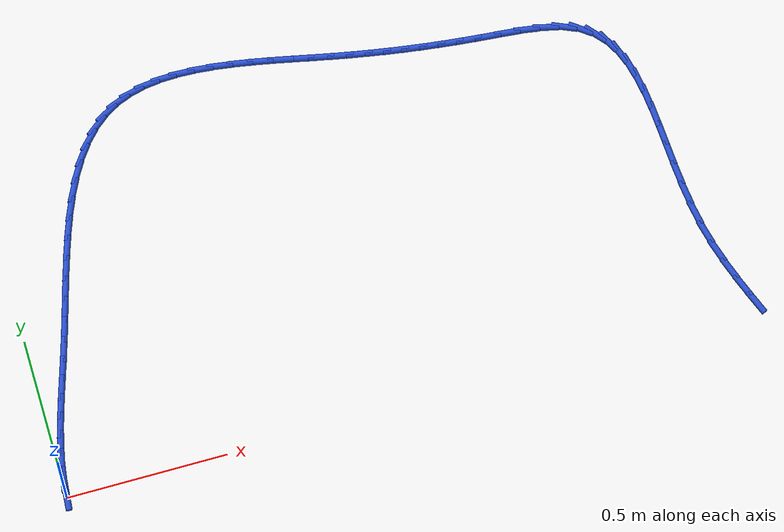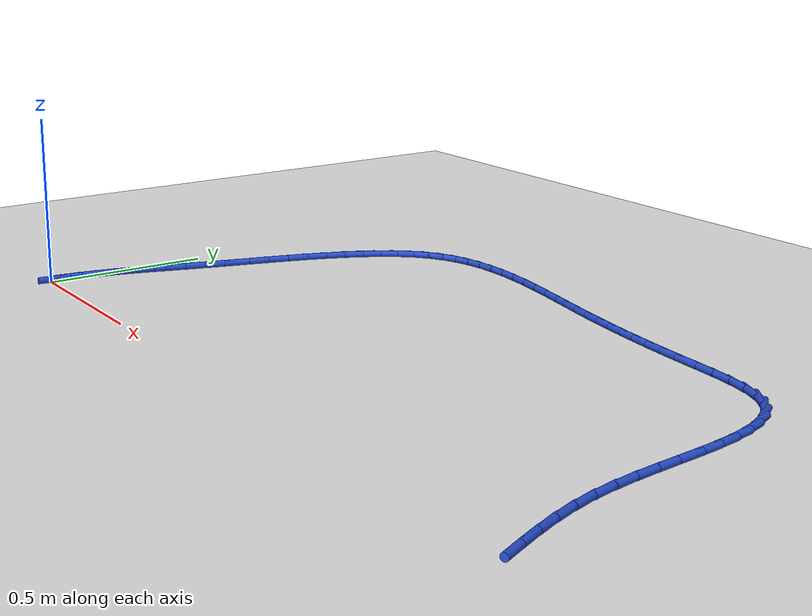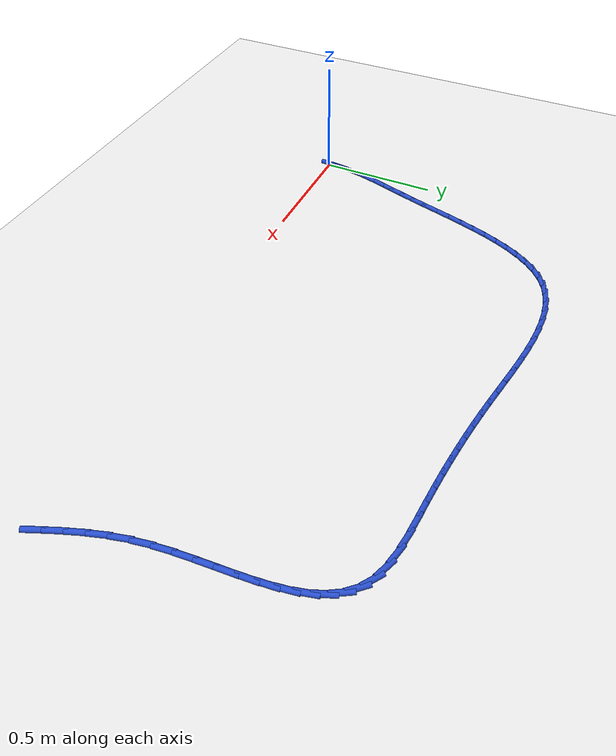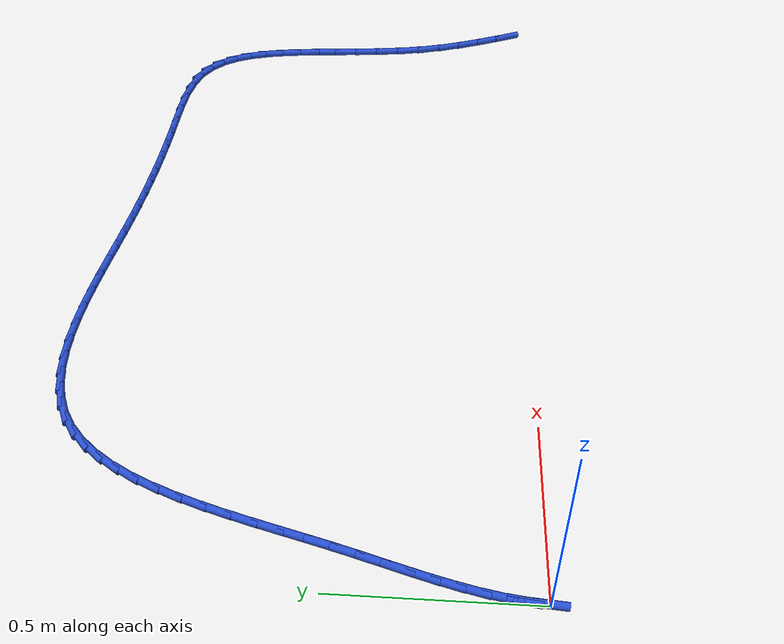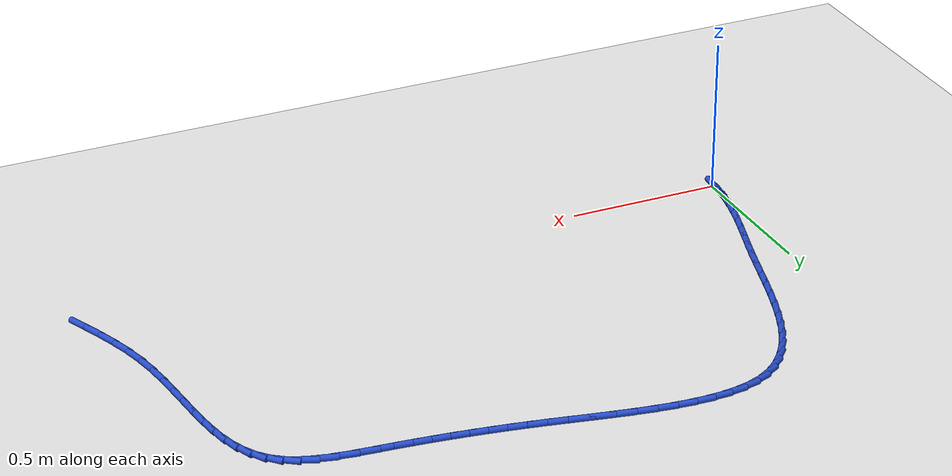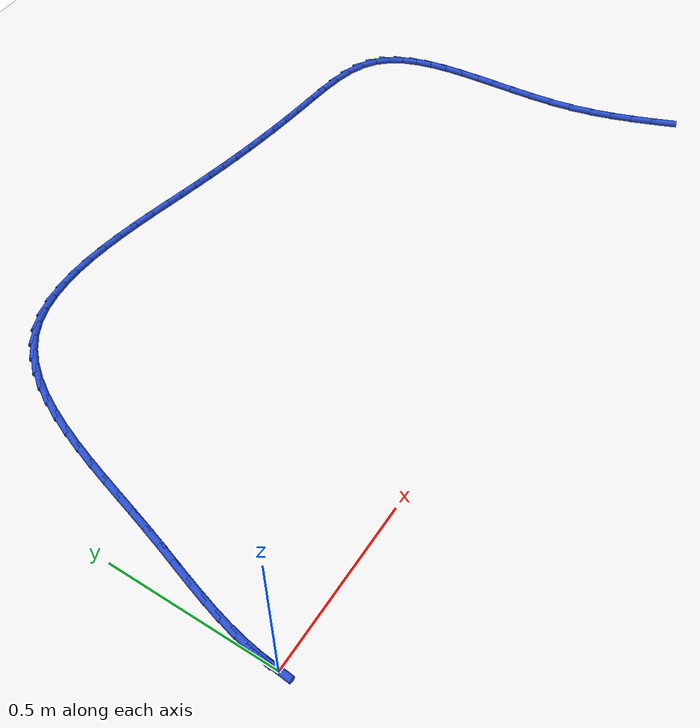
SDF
<sdf version="1.6">
 <world name="default">
  <model name="ground_plane">
   <static>1</static>
   <link name="link">
    <collision name="collision">
     <geometry><plane><normal>0 0 1</normal><size>100 100</size></plane></geometry>
     <surface><friction><ode><mu>100</mu><mu2>50</mu2></ode></friction></surface>
    </collision>
    <visual name="visual">
     <cast_shadows>0</cast_shadows>
     <geometry><plane><normal>0 0 1</normal><size>100 100</size></plane></geometry>
     <material>
      <script><uri>file://media/materials/scripts/gazebo.material</uri><name>Gazebo/WhiteGlow</name></script>
     </material>
    </visual>
   </link>
  </model>
  <model name="line">
   <link name="link_0">
    <pose>3.122502256758253e-17 9.71445146547012e-17 0.01 0 1.57 1.4869600935021465</pose>
    <collision name="collision">
     <geometry><cylinder><radius>0.01</radius><length>0.08</length></cylinder></geometry>
    </collision>
    <visual name="visual">
     <material>
      <script><name>Gazebo/Blue</name><uri>file://media/materials/scripts/gazebo.material</uri></script>
     </material>
     <geometry><cylinder><radius>0.01</radius><length>0.08</length></cylinder></geometry>
    </visual>
   </link>
   <link name="link_1">
    <pose>0.004678604671483911 0.055675668333571945 0.01 0 1.57 1.4202148316017842</pose>
    <collision name="collision">
     <geometry><cylinder><radius>0.01</radius><length>0.08</length></cylinder></geometry>
    </collision>
    <visual name="visual">
     <material>
      <script><name>Gazebo/Blue</name><uri>file://media/materials/scripts/gazebo.material</uri></script>
     </material>
     <geometry><cylinder><radius>0.01</radius><length>0.08</length></cylinder></geometry>
    </visual>
   </link>
   <link name="link_2">
    <pose>0.013004435005590488 0.11054832172414104 0.01 0 1.57 1.3642246685337596</pose>
    <collision name="collision">
     <geometry><cylinder><radius>0.01</radius><length>0.08</length></cylinder></geometry>
    </collision>
    <visual name="visual">
     <material>
      <script><name>Gazebo/Blue</name><uri>file://media/materials/scripts/gazebo.material</uri></script>
     </material>
     <geometry><cylinder><radius>0.01</radius><length>0.08</length></cylinder></geometry>
    </visual>
   </link>
   <link name="link_3">
    <pose>0.02440961978854685 0.16497250902468139 0.01 0 1.57 1.3200383861064322</pose>
    <collision name="collision">
     <geometry><cylinder><radius>0.01</radius><length>0.08</length></cylinder></geometry>
    </collision>
    <visual name="visual">
     <material>
      <script><name>Gazebo/Blue</name><uri>file://media/materials/scripts/gazebo.material</uri></script>
     </material>
     <geometry><cylinder><radius>0.01</radius><length>0.08</length></cylinder></geometry>
    </visual>
   </link>
   <link name="link_4">
    <pose>0.03832628780658009 0.2193027790881671 0.01 0 1.57 1.2880503364244809</pose>
    <collision name="collision">
     <geometry><cylinder><radius>0.01</radius><length>0.08</length></cylinder></geometry>
    </collision>
    <visual name="visual">
     <material>
      <script><name>Gazebo/Blue</name><uri>file://media/materials/scripts/gazebo.material</uri></script>
     </material>
     <geometry><cylinder><radius>0.01</radius><length>0.08</length></cylinder></geometry>
    </visual>
   </link>
   <link name="link_5">
    <pose>0.05418656784591731 0.2738936807675722 0.01 0 1.57 1.2681735348550305</pose>
    <collision name="collision">
     <geometry><cylinder><radius>0.01</radius><length>0.08</length></cylinder></geometry>
    </collision>
    <visual name="visual">
     <material>
      <script><name>Gazebo/Blue</name><uri>file://media/materials/scripts/gazebo.material</uri></script>
     </material>
     <geometry><cylinder><radius>0.01</radius><length>0.08</length></cylinder></geometry>
    </visual>
   </link>
   <link name="link_6">
    <pose>0.07142258869278563 0.32909976291587095 0.01 0 1.57 1.2600016808793706</pose>
    <collision name="collision">
     <geometry><cylinder><radius>0.01</radius><length>0.08</length></cylinder></geometry>
    </collision>
    <visual name="visual">
     <material>
      <script><name>Gazebo/Blue</name><uri>file://media/materials/scripts/gazebo.material</uri></script>
     </material>
     <geometry><cylinder><radius>0.01</radius><length>0.08</length></cylinder></geometry>
    </visual>
   </link>
   <link name="link_7">
    <pose>0.0894664791334121 0.3852755743860372 0.01 0 1.57 1.2629266580736835</pose>
    <collision name="collision">
     <geometry><cylinder><radius>0.01</radius><length>0.08</length></cylinder></geometry>
    </collision>
    <visual name="visual">
     <material>
      <script><name>Gazebo/Blue</name><uri>file://media/materials/scripts/gazebo.material</uri></script>
     </material>
     <geometry><cylinder><radius>0.01</radius><length>0.08</length></cylinder></geometry>
    </visual>
   </link>
   <link name="link_8">
    <pose>0.1077503679540238 0.4427756640310451 0.01 0 1.57 1.2754127616339617</pose>
    <collision name="collision">
     <geometry><cylinder><radius>0.01</radius><length>0.08</length></cylinder></geometry>
    </collision>
    <visual name="visual">
     <material>
      <script><name>Gazebo/Blue</name><uri>file://media/materials/scripts/gazebo.material</uri></script>
     </material>
     <geometry><cylinder><radius>0.01</radius><length>0.08</length></cylinder></geometry>
    </visual>
   </link>
   <link name="link_9">
    <pose>0.12574480850458739 0.501912413305112 0.01 0 1.57 1.2862988838026777</pose>
    <collision name="collision">
     <geometry><cylinder><radius>0.01</radius><length>0.08</length></cylinder></geometry>
    </collision>
    <visual name="visual">
     <material>
      <script><name>Gazebo/Blue</name><uri>file://media/materials/scripts/gazebo.material</uri></script>
     </material>
     <geometry><cylinder><radius>0.01</radius><length>0.08</length></cylinder></geometry>
    </visual>
   </link>
   <link name="link_10">
    <pose>0.14344103221684198 0.5624268077073328 0.01 0 1.57 1.2883929563439216</pose>
    <collision name="collision">
     <geometry><cylinder><radius>0.01</radius><length>0.08</length></cylinder></geometry>
    </collision>
    <visual name="visual">
     <material>
      <script><name>Gazebo/Blue</name><uri>file://media/materials/scripts/gazebo.material</uri></script>
     </material>
     <geometry><cylinder><radius>0.01</radius><length>0.08</length></cylinder></geometry>
    </visual>
   </link>
   <link name="link_11">
    <pose>0.1612050300426982 0.6236485688840195 0.01 0 1.57 1.2818717499731367</pose>
    <collision name="collision">
     <geometry><cylinder><radius>0.01</radius><length>0.08</length></cylinder></geometry>
    </collision>
    <visual name="visual">
     <material>
      <script><name>Gazebo/Blue</name><uri>file://media/materials/scripts/gazebo.material</uri></script>
     </material>
     <geometry><cylinder><radius>0.01</radius><length>0.08</length></cylinder></geometry>
    </visual>
   </link>
   <link name="link_12">
    <pose>0.17941104086399276 0.6848983671425415 0.01 0 1.57 1.2666306372250498</pose>
    <collision name="collision">
     <geometry><cylinder><radius>0.01</radius><length>0.08</length></cylinder></geometry>
    </collision>
    <visual name="visual">
     <material>
      <script><name>Gazebo/Blue</name><uri>file://media/materials/scripts/gazebo.material</uri></script>
     </material>
     <geometry><cylinder><radius>0.01</radius><length>0.08</length></cylinder></geometry>
    </visual>
   </link>
   <link name="link_13">
    <pose>0.1984333035625625 0.7454968727902685 0.01 0 1.57 1.2421253601103361</pose>
    <collision name="collision">
     <geometry><cylinder><radius>0.01</radius><length>0.08</length></cylinder></geometry>
    </collision>
    <visual name="visual">
     <material>
      <script><name>Gazebo/Blue</name><uri>file://media/materials/scripts/gazebo.material</uri></script>
     </material>
     <geometry><cylinder><radius>0.01</radius><length>0.08</length></cylinder></geometry>
    </visual>
   </link>
   <link name="link_14">
    <pose>0.21864605702024417 0.8047647561345707 0.01 0 1.57 1.2073522287505407</pose>
    <collision name="collision">
     <geometry><cylinder><radius>0.01</radius><length>0.08</length></cylinder></geometry>
    </collision>
    <visual name="visual">
     <material>
      <script><name>Gazebo/Blue</name><uri>file://media/materials/scripts/gazebo.material</uri></script>
     </material>
     <geometry><cylinder><radius>0.01</radius><length>0.08</length></cylinder></geometry>
    </visual>
   </link>
   <link name="link_15">
    <pose>0.24042354011887462 0.8620226874828172 0.01 0 1.57 1.160808446942961</pose>
    <collision name="collision">
     <geometry><cylinder><radius>0.01</radius><length>0.08</length></cylinder></geometry>
    </collision>
    <visual name="visual">
     <material>
      <script><name>Gazebo/Blue</name><uri>file://media/materials/scripts/gazebo.material</uri></script>
     </material>
     <geometry><cylinder><radius>0.01</radius><length>0.08</length></cylinder></geometry>
    </visual>
   </link>
   <link name="link_16">
    <pose>0.26413999174029057 0.9165913371423778 0.01 0 1.57 1.1004581570107168</pose>
    <collision name="collision">
     <geometry><cylinder><radius>0.01</radius><length>0.08</length></cylinder></geometry>
    </collision>
    <visual name="visual">
     <material>
      <script><name>Gazebo/Blue</name><uri>file://media/materials/scripts/gazebo.material</uri></script>
     </material>
     <geometry><cylinder><radius>0.01</radius><length>0.08</length></cylinder></geometry>
    </visual>
   </link>
   <link name="link_17">
    <pose>0.2901696507663287 0.967791375420622 0.01 0 1.57 1.0237625803660722</pose>
    <collision name="collision">
     <geometry><cylinder><radius>0.01</radius><length>0.08</length></cylinder></geometry>
    </collision>
    <visual name="visual">
     <material>
      <script><name>Gazebo/Blue</name><uri>file://media/materials/scripts/gazebo.material</uri></script>
     </material>
     <geometry><cylinder><radius>0.01</radius><length>0.08</length></cylinder></geometry>
    </visual>
   </link>
   <link name="link_18">
    <pose>0.31888675607882605 1.01494347262492 0.01 0 1.57 0.9278963346983794</pose>
    <collision name="collision">
     <geometry><cylinder><radius>0.01</radius><length>0.08</length></cylinder></geometry>
    </collision>
    <visual name="visual">
     <material>
      <script><name>Gazebo/Blue</name><uri>file://media/materials/scripts/gazebo.material</uri></script>
     </material>
     <geometry><cylinder><radius>0.01</radius><length>0.08</length></cylinder></geometry>
    </visual>
   </link>
   <link name="link_19">
    <pose>0.3506655465596191 1.0573682990626405 0.01 0 1.57 0.8103609685241255</pose>
    <collision name="collision">
     <geometry><cylinder><radius>0.01</radius><length>0.08</length></cylinder></geometry>
    </collision>
    <visual name="visual">
     <material>
      <script><name>Gazebo/Blue</name><uri>file://media/materials/scripts/gazebo.material</uri></script>
     </material>
     <geometry><cylinder><radius>0.01</radius><length>0.08</length></cylinder></geometry>
    </visual>
   </link>
   <link name="link_20">
    <pose>0.38588026109054485 1.094386525041154 0.01 0 1.57 0.670230969305245</pose>
    <collision name="collision">
     <geometry><cylinder><radius>0.01</radius><length>0.08</length></cylinder></geometry>
    </collision>
    <visual name="visual">
     <material>
      <script><name>Gazebo/Blue</name><uri>file://media/materials/scripts/gazebo.material</uri></script>
     </material>
     <geometry><cylinder><radius>0.01</radius><length>0.08</length></cylinder></geometry>
    </visual>
   </link>
   <link name="link_21">
    <pose>0.42490513855344003 1.1253188208678302 0.01 0 1.57 0.5105217869587192</pose>
    <collision name="collision">
     <geometry><cylinder><radius>0.01</radius><length>0.08</length></cylinder></geometry>
    </collision>
    <visual name="visual">
     <material>
      <script><name>Gazebo/Blue</name><uri>file://media/materials/scripts/gazebo.material</uri></script>
     </material>
     <geometry><cylinder><radius>0.01</radius><length>0.08</length></cylinder></geometry>
    </visual>
   </link>
   <link name="link_22">
    <pose>0.4680991086173036 1.1495093429322423 0.01 0 1.57 0.3528532784556485</pose>
    <collision name="collision">
     <geometry><cylinder><radius>0.01</radius><length>0.08</length></cylinder></geometry>
    </collision>
    <visual name="visual">
     <material>
      <script><name>Gazebo/Blue</name><uri>file://media/materials/scripts/gazebo.material</uri></script>
     </material>
     <geometry><cylinder><radius>0.01</radius><length>0.08</length></cylinder></geometry>
    </visual>
   </link>
   <link name="link_23">
    <pose>0.5154103253828128 1.1669324242938774 0.01 0 1.57 0.21860838550138775</pose>
    <collision name="collision">
     <geometry><cylinder><radius>0.01</radius><length>0.08</length></cylinder></geometry>
    </collision>
    <visual name="visual">
     <material>
      <script><name>Gazebo/Blue</name><uri>file://media/materials/scripts/gazebo.material</uri></script>
     </material>
     <geometry><cylinder><radius>0.01</radius><length>0.08</length></cylinder></geometry>
    </visual>
   </link>
   <link name="link_24">
    <pose>0.5663406641362243 1.1782470407193677 0.01 0 1.57 0.10876121152454575</pose>
    <collision name="collision">
     <geometry><cylinder><radius>0.01</radius><length>0.08</length></cylinder></geometry>
    </collision>
    <visual name="visual">
     <material>
      <script><name>Gazebo/Blue</name><uri>file://media/materials/scripts/gazebo.material</uri></script>
     </material>
     <geometry><cylinder><radius>0.01</radius><length>0.08</length></cylinder></geometry>
    </visual>
   </link>
   <link name="link_25">
    <pose>0.620369575001992 1.1841465707365513 0.01 0 1.57 0.020804027772219288</pose>
    <collision name="collision">
     <geometry><cylinder><radius>0.01</radius><length>0.08</length></cylinder></geometry>
    </collision>
    <visual name="visual">
     <material>
      <script><name>Gazebo/Blue</name><uri>file://media/materials/scripts/gazebo.material</uri></script>
     </material>
     <geometry><cylinder><radius>0.01</radius><length>0.08</length></cylinder></geometry>
    </visual>
   </link>
   <link name="link_26">
    <pose>0.6769765081045702 1.1853243928732669 0.01 0 1.57 -0.04855187778987565</pose>
    <collision name="collision">
     <geometry><cylinder><radius>0.01</radius><length>0.08</length></cylinder></geometry>
    </collision>
    <visual name="visual">
     <material>
      <script><name>Gazebo/Blue</name><uri>file://media/materials/scripts/gazebo.material</uri></script>
     </material>
     <geometry><cylinder><radius>0.01</radius><length>0.08</length></cylinder></geometry>
    </visual>
   </link>
   <link name="link_27">
    <pose>0.7356409135684141 1.182473885657353 0.01 0 1.57 -0.10238692249650651</pose>
    <collision name="collision">
     <geometry><cylinder><radius>0.01</radius><length>0.08</length></cylinder></geometry>
    </collision>
    <visual name="visual">
     <material>
      <script><name>Gazebo/Blue</name><uri>file://media/materials/scripts/gazebo.material</uri></script>
     </material>
     <geometry><cylinder><radius>0.01</radius><length>0.08</length></cylinder></geometry>
    </visual>
   </link>
   <link name="link_28">
    <pose>0.7958422415179771 1.1762884276166474 0.01 0 1.57 -0.1432038117956986</pose>
    <collision name="collision">
     <geometry><cylinder><radius>0.01</radius><length>0.08</length></cylinder></geometry>
    </collision>
    <visual name="visual">
     <material>
      <script><name>Gazebo/Blue</name><uri>file://media/materials/scripts/gazebo.material</uri></script>
     </material>
     <geometry><cylinder><radius>0.01</radius><length>0.08</length></cylinder></geometry>
    </visual>
   </link>
   <link name="link_29">
    <pose>0.8570599420777147 1.1674613972789891 0.01 0 1.57 -0.1728582013058467</pose>
    <collision name="collision">
     <geometry><cylinder><radius>0.01</radius><length>0.08</length></cylinder></geometry>
    </collision>
    <visual name="visual">
     <material>
      <script><name>Gazebo/Blue</name><uri>file://media/materials/scripts/gazebo.material</uri></script>
     </material>
     <geometry><cylinder><radius>0.01</radius><length>0.08</length></cylinder></geometry>
    </visual>
   </link>
   <link name="link_30">
    <pose>0.9187734653720807 1.1566861731722164 0.01 0 1.57 -0.19259458537029503</pose>
    <collision name="collision">
     <geometry><cylinder><radius>0.01</radius><length>0.08</length></cylinder></geometry>
    </collision>
    <visual name="visual">
     <material>
      <script><name>Gazebo/Blue</name><uri>file://media/materials/scripts/gazebo.material</uri></script>
     </material>
     <geometry><cylinder><radius>0.01</radius><length>0.08</length></cylinder></geometry>
    </visual>
   </link>
   <link name="link_31">
    <pose>0.9804622615255296 1.1446561338241674 0.01 0 1.57 -0.2030939256790412</pose>
    <collision name="collision">
     <geometry><cylinder><radius>0.01</radius><length>0.08</length></cylinder></geometry>
    </collision>
    <visual name="visual">
     <material>
      <script><name>Gazebo/Blue</name><uri>file://media/materials/scripts/gazebo.material</uri></script>
     </material>
     <geometry><cylinder><radius>0.01</radius><length>0.08</length></cylinder></geometry>
    </visual>
   </link>
   <link name="link_32">
    <pose>1.0416057806625159 1.1320646577626805 0.01 0 1.57 -0.2044914714822311</pose>
    <collision name="collision">
     <geometry><cylinder><radius>0.01</radius><length>0.08</length></cylinder></geometry>
    </collision>
    <visual name="visual">
     <material>
      <script><name>Gazebo/Blue</name><uri>file://media/materials/scripts/gazebo.material</uri></script>
     </material>
     <geometry><cylinder><radius>0.01</radius><length>0.08</length></cylinder></geometry>
    </visual>
   </link>
   <link name="link_33">
    <pose>1.101683472907494 1.1196051235155946 0.01 0 1.57 -0.19676267278444534</pose>
    <collision name="collision">
     <geometry><cylinder><radius>0.01</radius><length>0.08</length></cylinder></geometry>
    </collision>
    <visual name="visual">
     <material>
      <script><name>Gazebo/Blue</name><uri>file://media/materials/scripts/gazebo.material</uri></script>
     </material>
     <geometry><cylinder><radius>0.01</radius><length>0.08</length></cylinder></geometry>
    </visual>
   </link>
   <link name="link_34">
    <pose>1.160217255320727 1.1079368892467807 0.01 0 1.57 -0.18452052933650978</pose>
    <collision name="collision">
     <geometry><cylinder><radius>0.01</radius><length>0.08</length></cylinder></geometry>
    </collision>
    <visual name="visual">
     <material>
      <script><name>Gazebo/Blue</name><uri>file://media/materials/scripts/gazebo.material</uri></script>
     </material>
     <geometry><cylinder><radius>0.01</radius><length>0.08</length></cylinder></geometry>
    </visual>
   </link>
   <link name="link_35">
    <pose>1.2172660851177868 1.097289088965699 0.01 0 1.57 -0.17142196298733386</pose>
    <collision name="collision">
     <geometry><cylinder><radius>0.01</radius><length>0.08</length></cylinder></geometry>
    </collision>
    <visual name="visual">
     <material>
      <script><name>Gazebo/Blue</name><uri>file://media/materials/scripts/gazebo.material</uri></script>
     </material>
     <geometry><cylinder><radius>0.01</radius><length>0.08</length></cylinder></geometry>
    </visual>
   </link>
   <link name="link_36">
    <pose>1.2732571642590698 1.0875958549349343 0.01 0 1.57 -0.15780039104398483</pose>
    <collision name="collision">
     <geometry><cylinder><radius>0.01</radius><length>0.08</length></cylinder></geometry>
    </collision>
    <visual name="visual">
     <material>
      <script><name>Gazebo/Blue</name><uri>file://media/materials/scripts/gazebo.material</uri></script>
     </material>
     <geometry><cylinder><radius>0.01</radius><length>0.08</length></cylinder></geometry>
    </visual>
   </link>
   <link name="link_37">
    <pose>1.3286248885709833 1.078785556393784 0.01 0 1.57 -0.1439622150211946</pose>
    <collision name="collision">
     <geometry><cylinder><radius>0.01</radius><length>0.08</length></cylinder></geometry>
    </collision>
    <visual name="visual">
     <material>
      <script><name>Gazebo/Blue</name><uri>file://media/materials/scripts/gazebo.material</uri></script>
     </material>
     <geometry><cylinder><radius>0.01</radius><length>0.08</length></cylinder></geometry>
    </visual>
   </link>
   <link name="link_38">
    <pose>1.3838036538799339 1.0707865625815465 0.01 0 1.57 -0.13023607474544502</pose>
    <collision name="collision">
     <geometry><cylinder><radius>0.01</radius><length>0.08</length></cylinder></geometry>
    </collision>
    <visual name="visual">
     <material>
      <script><name>Gazebo/Blue</name><uri>file://media/materials/scripts/gazebo.material</uri></script>
     </material>
     <geometry><cylinder><radius>0.01</radius><length>0.08</length></cylinder></geometry>
    </visual>
   </link>
   <link name="link_39">
    <pose>1.4392278560123273 1.0635272427375193 0.01 0 1.57 -0.11694703345748562</pose>
    <collision name="collision">
     <geometry><cylinder><radius>0.01</radius><length>0.08</length></cylinder></geometry>
    </collision>
    <visual name="visual">
     <material>
      <script><name>Gazebo/Blue</name><uri>file://media/materials/scripts/gazebo.material</uri></script>
     </material>
     <geometry><cylinder><radius>0.01</radius><length>0.08</length></cylinder></geometry>
    </visual>
   </link>
   <link name="link_40">
    <pose>1.4953318907945705 1.0569359661010005 0.01 0 1.57 -0.1043910056741298</pose>
    <collision name="collision">
     <geometry><cylinder><radius>0.01</radius><length>0.08</length></cylinder></geometry>
    </collision>
    <visual name="visual">
     <material>
      <script><name>Gazebo/Blue</name><uri>file://media/materials/scripts/gazebo.material</uri></script>
     </material>
     <geometry><cylinder><radius>0.01</radius><length>0.08</length></cylinder></geometry>
    </visual>
   </link>
   <link name="link_41">
    <pose>1.5525501540530704 1.0509411019112882 0.01 0 1.57 -0.09281359976061462</pose>
    <collision name="collision">
     <geometry><cylinder><radius>0.01</radius><length>0.08</length></cylinder></geometry>
    </collision>
    <visual name="visual">
     <material>
      <script><name>Gazebo/Blue</name><uri>file://media/materials/scripts/gazebo.material</uri></script>
     </material>
     <geometry><cylinder><radius>0.01</radius><length>0.08</length></cylinder></geometry>
    </visual>
   </link>
   <link name="link_42">
    <pose>1.611317041614234 1.0454710194076802 0.01 0 1.57 -0.08548516641057201</pose>
    <collision name="collision">
     <geometry><cylinder><radius>0.01</radius><length>0.08</length></cylinder></geometry>
    </collision>
    <visual name="visual">
     <material>
      <script><name>Gazebo/Blue</name><uri>file://media/materials/scripts/gazebo.material</uri></script>
     </material>
     <geometry><cylinder><radius>0.01</radius><length>0.08</length></cylinder></geometry>
    </visual>
   </link>
   <link name="link_43">
    <pose>1.671800650765937 1.0402879363634345 0.01 0 1.57 -0.10238040037397803</pose>
    <collision name="collision">
     <geometry><cylinder><radius>0.01</radius><length>0.08</length></cylinder></geometry>
    </collision>
    <visual name="visual">
     <material>
      <script><name>Gazebo/Blue</name><uri>file://media/materials/scripts/gazebo.material</uri></script>
     </material>
     <geometry><cylinder><radius>0.01</radius><length>0.08</length></cylinder></geometry>
    </visual>
   </link>
   <link name="link_44">
    <pose>1.7324160900406262 1.0340603294698132 0.01 0 1.57 -0.1535350725995865</pose>
    <collision name="collision">
     <geometry><cylinder><radius>0.01</radius><length>0.08</length></cylinder></geometry>
    </collision>
    <visual name="visual">
     <material>
      <script><name>Gazebo/Blue</name><uri>file://media/materials/scripts/gazebo.material</uri></script>
     </material>
     <geometry><cylinder><radius>0.01</radius><length>0.08</length></cylinder></geometry>
    </visual>
   </link>
   <link name="link_45">
    <pose>1.7908697057445129 1.0250144578842786 0.01 0 1.57 -0.24741884975120312</pose>
    <collision name="collision">
     <geometry><cylinder><radius>0.01</radius><length>0.08</length></cylinder></geometry>
    </collision>
    <visual name="visual">
     <material>
      <script><name>Gazebo/Blue</name><uri>file://media/materials/scripts/gazebo.material</uri></script>
     </material>
     <geometry><cylinder><radius>0.01</radius><length>0.08</length></cylinder></geometry>
    </visual>
   </link>
   <link name="link_46">
    <pose>1.8448658543818721 1.0113753392685256 0.01 0 1.57 -0.4005978961864404</pose>
    <collision name="collision">
     <geometry><cylinder><radius>0.01</radius><length>0.08</length></cylinder></geometry>
    </collision>
    <visual name="visual">
     <material>
      <script><name>Gazebo/Blue</name><uri>file://media/materials/scripts/gazebo.material</uri></script>
     </material>
     <geometry><cylinder><radius>0.01</radius><length>0.08</length></cylinder></geometry>
    </visual>
   </link>
   <link name="link_47">
    <pose>1.8921088991172068 0.9913679962963643 0.01 0 1.57 -0.6201366010161936</pose>
    <collision name="collision">
     <geometry><cylinder><radius>0.01</radius><length>0.08</length></cylinder></geometry>
    </collision>
    <visual name="visual">
     <material>
      <script><name>Gazebo/Blue</name><uri>file://media/materials/scripts/gazebo.material</uri></script>
     </material>
     <geometry><cylinder><radius>0.01</radius><length>0.08</length></cylinder></geometry>
    </visual>
   </link>
   <link name="link_48">
    <pose>1.9309000764172612 0.9636666250716558 0.01 0 1.57 -0.848633177321672</pose>
    <collision name="collision">
     <geometry><cylinder><radius>0.01</radius><length>0.08</length></cylinder></geometry>
    </collision>
    <visual name="visual">
     <material>
      <script><name>Gazebo/Blue</name><uri>file://media/materials/scripts/gazebo.material</uri></script>
     </material>
     <geometry><cylinder><radius>0.01</radius><length>0.08</length></cylinder></geometry>
    </visual>
   </link>
   <link name="link_49">
    <pose>1.9617699856755422 0.9286231154213402 0.01 0 1.57 -1.0479627159844351</pose>
    <collision name="collision">
     <geometry><cylinder><radius>0.01</radius><length>0.08</length></cylinder></geometry>
    </collision>
    <visual name="visual">
     <material>
      <script><name>Gazebo/Blue</name><uri>file://media/materials/scripts/gazebo.material</uri></script>
     </material>
     <geometry><cylinder><radius>0.01</radius><length>0.08</length></cylinder></geometry>
    </visual>
   </link>
   <link name="link_50">
    <pose>1.9857696203489161 0.886980976609079 0.01 0 1.57 -1.2052342251373187</pose>
    <collision name="collision">
     <geometry><cylinder><radius>0.01</radius><length>0.08</length></cylinder></geometry>
    </collision>
    <visual name="visual">
     <material>
      <script><name>Gazebo/Blue</name><uri>file://media/materials/scripts/gazebo.material</uri></script>
     </material>
     <geometry><cylinder><radius>0.01</radius><length>0.08</length></cylinder></geometry>
    </visual>
   </link>
   <link name="link_51">
    <pose>2.0039499738942506 0.8394837178985352 0.01 0 1.57 -1.3211743842888388</pose>
    <collision name="collision">
     <geometry><cylinder><radius>0.01</radius><length>0.08</length></cylinder></geometry>
    </collision>
    <visual name="visual">
     <material>
      <script><name>Gazebo/Blue</name><uri>file://media/materials/scripts/gazebo.material</uri></script>
     </material>
     <geometry><cylinder><radius>0.01</radius><length>0.08</length></cylinder></geometry>
    </visual>
   </link>
   <link name="link_52">
    <pose>2.0173620397684124 0.786874848553371 0.01 0 1.57 -1.4022579969238507</pose>
    <collision name="collision">
     <geometry><cylinder><radius>0.01</radius><length>0.08</length></cylinder></geometry>
    </collision>
    <visual name="visual">
     <material>
      <script><name>Gazebo/Blue</name><uri>file://media/materials/scripts/gazebo.material</uri></script>
     </material>
     <geometry><cylinder><radius>0.01</radius><length>0.08</length></cylinder></geometry>
    </visual>
   </link>
   <link name="link_53">
    <pose>2.027056811428268 0.7298978778372482 0.01 0 1.57 -1.455333800651143</pose>
    <collision name="collision">
     <geometry><cylinder><radius>0.01</radius><length>0.08</length></cylinder></geometry>
    </collision>
    <visual name="visual">
     <material>
      <script><name>Gazebo/Blue</name><uri>file://media/materials/scripts/gazebo.material</uri></script>
     </material>
     <geometry><cylinder><radius>0.01</radius><length>0.08</length></cylinder></geometry>
    </visual>
   </link>
   <link name="link_54">
    <pose>2.034085282330685 0.6692963150138292 0.01 0 1.57 -1.4857321200736773</pose>
    <collision name="collision">
     <geometry><cylinder><radius>0.01</radius><length>0.08</length></cylinder></geometry>
    </collision>
    <visual name="visual">
     <material>
      <script><name>Gazebo/Blue</name><uri>file://media/materials/scripts/gazebo.material</uri></script>
     </material>
     <geometry><cylinder><radius>0.01</radius><length>0.08</length></cylinder></geometry>
    </visual>
   </link>
   <link name="link_55">
    <pose>2.039498445932531 0.6058136693467762 0.01 0 1.57 -1.4970377579529686</pose>
    <collision name="collision">
     <geometry><cylinder><radius>0.01</radius><length>0.08</length></cylinder></geometry>
    </collision>
    <visual name="visual">
     <material>
      <script><name>Gazebo/Blue</name><uri>file://media/materials/scripts/gazebo.material</uri></script>
     </material>
     <geometry><cylinder><radius>0.01</radius><length>0.08</length></cylinder></geometry>
    </visual>
   </link>
   <link name="link_56">
    <pose>2.044347295690672 0.540193450099752 0.01 0 1.57 -1.491346128818779</pose>
    <collision name="collision">
     <geometry><cylinder><radius>0.01</radius><length>0.08</length></cylinder></geometry>
    </collision>
    <visual name="visual">
     <material>
      <script><name>Gazebo/Blue</name><uri>file://media/materials/scripts/gazebo.material</uri></script>
     </material>
     <geometry><cylinder><radius>0.01</radius><length>0.08</length></cylinder></geometry>
    </visual>
   </link>
   <link name="link_57">
    <pose>2.0496828250619754 0.4731791665364185 0.01 0 1.57 -1.4695663703917679</pose>
    <collision name="collision">
     <geometry><cylinder><radius>0.01</radius><length>0.08</length></cylinder></geometry>
    </collision>
    <visual name="visual">
     <material>
      <script><name>Gazebo/Blue</name><uri>file://media/materials/scripts/gazebo.material</uri></script>
     </material>
     <geometry><cylinder><radius>0.01</radius><length>0.08</length></cylinder></geometry>
    </visual>
   </link>
   <link name="link_58">
    <pose>2.056556027503308 0.4055143279204371 0.01 0 1.57 -1.4316741844125287</pose>
    <collision name="collision">
     <geometry><cylinder><radius>0.01</radius><length>0.08</length></cylinder></geometry>
    </collision>
    <visual name="visual">
     <material>
      <script><name>Gazebo/Blue</name><uri>file://media/materials/scripts/gazebo.material</uri></script>
     </material>
     <geometry><cylinder><radius>0.01</radius><length>0.08</length></cylinder></geometry>
    </visual>
   </link>
   <link name="link_59">
    <pose>2.066017896471538 0.33794244351547115 0.01 0 1.57 -1.3769419142289814</pose>
    <collision name="collision">
     <geometry><cylinder><radius>0.01</radius><length>0.08</length></cylinder></geometry>
    </collision>
    <visual name="visual">
     <material>
      <script><name>Gazebo/Blue</name><uri>file://media/materials/scripts/gazebo.material</uri></script>
     </material>
     <geometry><cylinder><radius>0.01</radius><length>0.08</length></cylinder></geometry>
    </visual>
   </link>
   <link name="link_60">
    <pose>2.079119383501418 0.27120700892317534 0.01 0 1.57 -1.310695145829999</pose>
    <collision name="collision">
     <geometry><cylinder><radius>0.01</radius><length>0.08</length></cylinder></geometry>
    </collision>
    <visual name="visual">
     <material>
      <script><name>Gazebo/Blue</name><uri>file://media/materials/scripts/gazebo.material</uri></script>
     </material>
     <geometry><cylinder><radius>0.01</radius><length>0.08</length></cylinder></geometry>
    </visual>
   </link>
   <link name="link_61">
    <pose>2.09649529804597 0.2059159031009915 0.01 0 1.57 -1.254553679964296</pose>
    <collision name="collision">
     <geometry><cylinder><radius>0.01</radius><length>0.08</length></cylinder></geometry>
    </collision>
    <visual name="visual">
     <material>
      <script><name>Gazebo/Blue</name><uri>file://media/materials/scripts/gazebo.material</uri></script>
     </material>
     <geometry><cylinder><radius>0.01</radius><length>0.08</length></cylinder></geometry>
    </visual>
   </link>
   <link name="link_62">
    <pose>2.1173420142643393 0.1422082329786444 0.01 0 1.57 -1.2131425689942292</pose>
    <collision name="collision">
     <geometry><cylinder><radius>0.01</radius><length>0.08</length></cylinder></geometry>
    </collision>
    <visual name="visual">
     <material>
      <script><name>Gazebo/Blue</name><uri>file://media/materials/scripts/gazebo.material</uri></script>
     </material>
     <geometry><cylinder><radius>0.01</radius><length>0.08</length></cylinder></geometry>
    </visual>
   </link>
   <link name="link_63">
    <pose>2.1405453288209966 0.08012189131059519 0.01 0 1.57 -1.1863748668742915</pose>
    <collision name="collision">
     <geometry><cylinder><radius>0.01</radius><length>0.08</length></cylinder></geometry>
    </collision>
    <visual name="visual">
     <material>
      <script><name>Gazebo/Blue</name><uri>file://media/materials/scripts/gazebo.material</uri></script>
     </material>
     <geometry><cylinder><radius>0.01</radius><length>0.08</length></cylinder></geometry>
    </visual>
   </link>
   <link name="link_64">
    <pose>2.164991038380415 0.019694770851305173 0.01 0 1.57 -1.174510841327396</pose>
    <collision name="collision">
     <geometry><cylinder><radius>0.01</radius><length>0.08</length></cylinder></geometry>
    </collision>
    <visual name="visual">
     <material>
      <script><name>Gazebo/Blue</name><uri>file://media/materials/scripts/gazebo.material</uri></script>
     </material>
     <geometry><cylinder><radius>0.01</radius><length>0.08</length></cylinder></geometry>
    </visual>
   </link>
   <link name="link_131">
    <pose>0.0047918760043057194 0.05553744369414297 0.01 0 1.57 1.484727588753961</pose>
    <collision name="collision">
     <geometry><cylinder><radius>0.01</radius><length>0.08</length></cylinder></geometry>
    </collision>
    <visual name="visual">
     <material>
      <script><name>Gazebo/Blue</name><uri>file://media/materials/scripts/gazebo.material</uri></script>
     </material>
     <geometry><cylinder><radius>0.01</radius><length>0.08</length></cylinder></geometry>
    </visual>
   </link>
  </model>
 </world>
</sdf>
